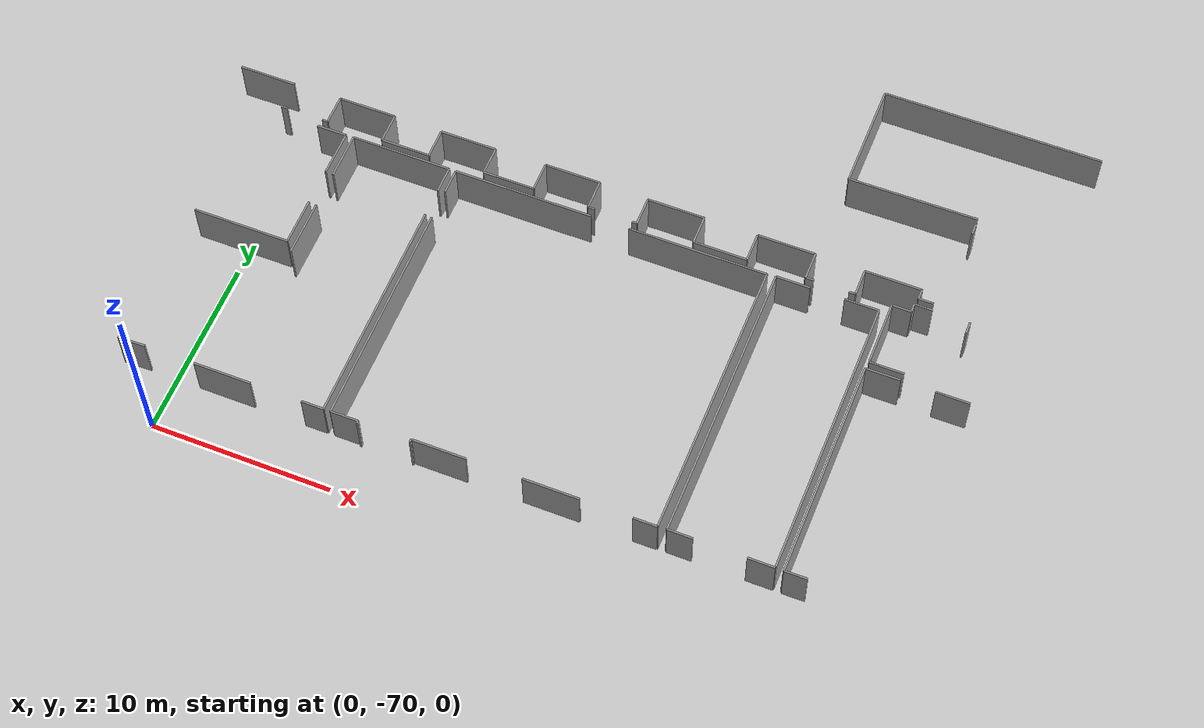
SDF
<sdf version="1.6">
 <world name="default">
  <model name="ground_plane">
   <static>1</static>
   <link name="link">
    <collision name="collision">
     <geometry><plane><normal>0 0 1</normal><size>100 100</size></plane></geometry>
     <surface><friction><ode><mu>100</mu><mu2>50</mu2></ode></friction></surface>
    </collision>
    <visual name="visual">
     <cast_shadows>0</cast_shadows>
     <geometry><plane><normal>0 0 1</normal><size>100 100</size></plane></geometry>
     <material>
      <script><uri>file://media/materials/scripts/gazebo.material</uri><name>Gazebo/Grey</name></script>
     </material>
    </visual>
   </link>
  </model>
  <model name="50036894">
   <static>1</static>
   <link name="Wall_270">
    <collision name="Wall_270_Collision">
     <geometry><box><size>1.68897285851 0.1 2.5</size></box></geometry>
     <pose>0.844486429255 0 1.25 0 0 0</pose>
    </collision>
    <visual name="Wall_270_Visual">
     <pose>0.844486429255 0 1.25 0 0 0</pose>
     <geometry><box><size>1.68897285851 0.1 2.5</size></box></geometry>
     <material>
      <script><uri>file://media/materials/scripts/gazebo.material</uri><name>Gazebo/Grey</name></script>
      <ambient>1 1 1 1</ambient>
     </material>
    </visual>
    <pose>123.582346937 -118.586943428 0 0 0 0.0</pose>
   </link>
   <link name="Wall_271">
    <collision name="Wall_271_Collision">
     <geometry><box><size>2.57961440192 0.1 2.5</size></box></geometry>
     <pose>1.28980720096 0 1.25 0 0 0</pose>
    </collision>
    <visual name="Wall_271_Visual">
     <pose>1.28980720096 0 1.25 0 0 0</pose>
     <geometry><box><size>2.57961440192 0.1 2.5</size></box></geometry>
     <material>
      <script><uri>file://media/materials/scripts/gazebo.material</uri><name>Gazebo/Grey</name></script>
      <ambient>1 1 1 1</ambient>
     </material>
    </visual>
    <pose>125.271319795 -118.586943428 0 0 0 -1.57079632679</pose>
   </link>
   <link name="Wall_272">
    <collision name="Wall_272_Collision">
     <geometry><box><size>2.6511294689 0.1 2.5</size></box></geometry>
     <pose>1.32556473445 0 1.25 0 0 0</pose>
    </collision>
    <visual name="Wall_272_Visual">
     <pose>1.32556473445 0 1.25 0 0 0</pose>
     <geometry><box><size>2.6511294689 0.1 2.5</size></box></geometry>
     <material>
      <script><uri>file://media/materials/scripts/gazebo.material</uri><name>Gazebo/Grey</name></script>
      <ambient>1 1 1 1</ambient>
     </material>
    </visual>
    <pose>125.271319795 -123.259261138 0 0 0 -1.57079632679</pose>
   </link>
   <link name="Wall_273">
    <collision name="Wall_273_Collision">
     <geometry><box><size>5.39659796233 0.1 2.5</size></box></geometry>
     <pose>2.69829898116 0 1.25 0 0 0</pose>
    </collision>
    <visual name="Wall_273_Visual">
     <pose>2.69829898116 0 1.25 0 0 0</pose>
     <geometry><box><size>5.39659796233 0.1 2.5</size></box></geometry>
     <material>
      <script><uri>file://media/materials/scripts/gazebo.material</uri><name>Gazebo/Grey</name></script>
      <ambient>1 1 1 1</ambient>
     </material>
    </visual>
    <pose>125.271319795 -125.910390607 0 0 0 3.14159265359</pose>
   </link>
   <link name="Wall_279">
    <collision name="Wall_279_Collision">
     <geometry><box><size>3.15148133824 0.1 2.5</size></box></geometry>
     <pose>1.57574066912 0 1.25 0 0 0</pose>
    </collision>
    <visual name="Wall_279_Visual">
     <pose>1.57574066912 0 1.25 0 0 0</pose>
     <geometry><box><size>3.15148133824 0.1 2.5</size></box></geometry>
     <material>
      <script><uri>file://media/materials/scripts/gazebo.material</uri><name>Gazebo/Grey</name></script>
      <ambient>1 1 1 1</ambient>
     </material>
    </visual>
    <pose>125.710046979 -126.427226445 0 0 0 1.57079632679</pose>
   </link>
   <link name="Wall_280">
    <collision name="Wall_280_Collision">
     <geometry><box><size>2.60979274579 0.1 2.5</size></box></geometry>
     <pose>1.30489637289 0 1.25 0 0 0</pose>
    </collision>
    <visual name="Wall_280_Visual">
     <pose>1.30489637289 0 1.25 0 0 0</pose>
     <geometry><box><size>2.60979274579 0.1 2.5</size></box></geometry>
     <material>
      <script><uri>file://media/materials/scripts/gazebo.material</uri><name>Gazebo/Grey</name></script>
      <ambient>1 1 1 1</ambient>
     </material>
    </visual>
    <pose>125.710046979 -121.181520202 0 0 0 1.57079632679</pose>
   </link>
   <link name="Wall_281">
    <collision name="Wall_281_Collision">
     <geometry><box><size>5.61469355667 0.1 2.5</size></box></geometry>
     <pose>2.80734677833 0 1.25 0 0 0</pose>
    </collision>
    <visual name="Wall_281_Visual">
     <pose>2.80734677833 0 1.25 0 0 0</pose>
     <geometry><box><size>5.61469355667 0.1 2.5</size></box></geometry>
     <material>
      <script><uri>file://media/materials/scripts/gazebo.material</uri><name>Gazebo/Grey</name></script>
      <ambient>1 1 1 1</ambient>
     </material>
    </visual>
    <pose>125.710046979 -118.571727457 0 0 0 0.0</pose>
   </link>
   <link name="Wall_282">
    <collision name="Wall_282_Collision">
     <geometry><box><size>1.50029480945 0.1 2.5</size></box></geometry>
     <pose>0.750147404726 0 1.25 0 0 0</pose>
    </collision>
    <visual name="Wall_282_Visual">
     <pose>0.750147404726 0 1.25 0 0 0</pose>
     <geometry><box><size>1.50029480945 0.1 2.5</size></box></geometry>
     <material>
      <script><uri>file://media/materials/scripts/gazebo.material</uri><name>Gazebo/Grey</name></script>
      <ambient>1 1 1 1</ambient>
     </material>
    </visual>
    <pose>131.324740536 -118.571727457 0 0 0 -1.57079632679</pose>
   </link>
   <link name="Wall_283">
    <collision name="Wall_283_Collision">
     <geometry><box><size>12.668818036 0.1 2.5</size></box></geometry>
     <pose>6.334409018 0 1.25 0 0 0</pose>
    </collision>
    <visual name="Wall_283_Visual">
     <pose>6.334409018 0 1.25 0 0 0</pose>
     <geometry><box><size>12.668818036 0.1 2.5</size></box></geometry>
     <material>
      <script><uri>file://media/materials/scripts/gazebo.material</uri><name>Gazebo/Grey</name></script>
      <ambient>1 1 1 1</ambient>
     </material>
    </visual>
    <pose>131.324740536 -121.70976802 0 0 0 -1.57079632679</pose>
   </link>
   <link name="Wall_284">
    <collision name="Wall_284_Collision">
     <geometry><box><size>1.24010169341 0.1 2.5</size></box></geometry>
     <pose>0.620050846705 0 1.25 0 0 0</pose>
    </collision>
    <visual name="Wall_284_Visual">
     <pose>0.620050846705 0 1.25 0 0 0</pose>
     <geometry><box><size>1.24010169341 0.1 2.5</size></box></geometry>
     <material>
      <script><uri>file://media/materials/scripts/gazebo.material</uri><name>Gazebo/Grey</name></script>
      <ambient>1 1 1 1</ambient>
     </material>
    </visual>
    <pose>131.324740536 -134.378586056 0 0 0 3.14159265359</pose>
   </link>
   <link name="Wall_285">
    <collision name="Wall_285_Collision">
     <geometry><box><size>3.18267408023 0.1 2.5</size></box></geometry>
     <pose>1.59133704011 0 1.25 0 0 0</pose>
    </collision>
    <visual name="Wall_285_Visual">
     <pose>1.59133704011 0 1.25 0 0 0</pose>
     <geometry><box><size>3.18267408023 0.1 2.5</size></box></geometry>
     <material>
      <script><uri>file://media/materials/scripts/gazebo.material</uri><name>Gazebo/Grey</name></script>
      <ambient>1 1 1 1</ambient>
     </material>
    </visual>
    <pose>127.229108154 -134.378586056 0 0 0 3.14159265359</pose>
   </link>
   <link name="Wall_286">
    <collision name="Wall_286_Collision">
     <geometry><box><size>1.52201726286 0.1 2.5</size></box></geometry>
     <pose>0.761008631428 0 1.25 0 0 0</pose>
    </collision>
    <visual name="Wall_286_Visual">
     <pose>0.761008631428 0 1.25 0 0 0</pose>
     <geometry><box><size>1.52201726286 0.1 2.5</size></box></geometry>
     <material>
      <script><uri>file://media/materials/scripts/gazebo.material</uri><name>Gazebo/Grey</name></script>
      <ambient>1 1 1 1</ambient>
     </material>
    </visual>
    <pose>121.246695281 -134.378586056 0 0 0 -3.11809697812</pose>
   </link>
   <link name="Wall_287">
    <collision name="Wall_287_Collision">
     <geometry><box><size>12.6264669148 0.1 2.5</size></box></geometry>
     <pose>6.31323345739 0 1.25 0 0 0</pose>
    </collision>
    <visual name="Wall_287_Visual">
     <pose>6.31323345739 0 1.25 0 0 0</pose>
     <geometry><box><size>12.6264669148 0.1 2.5</size></box></geometry>
     <material>
      <script><uri>file://media/materials/scripts/gazebo.material</uri><name>Gazebo/Grey</name></script>
      <ambient>1 1 1 1</ambient>
     </material>
    </visual>
    <pose>131.710211819 -134.368188475 0 0 0 1.57079632679</pose>
   </link>
   <link name="Wall_288">
    <collision name="Wall_288_Collision">
     <geometry><box><size>1.42954054105 0.1 2.5</size></box></geometry>
     <pose>0.714770270527 0 1.25 0 0 0</pose>
    </collision>
    <visual name="Wall_288_Visual">
     <pose>0.714770270527 0 1.25 0 0 0</pose>
     <geometry><box><size>1.42954054105 0.1 2.5</size></box></geometry>
     <material>
      <script><uri>file://media/materials/scripts/gazebo.material</uri><name>Gazebo/Grey</name></script>
      <ambient>1 1 1 1</ambient>
     </material>
    </visual>
    <pose>131.710211819 -120.007607986 0 0 0 1.57079632679</pose>
   </link>
   <link name="Wall_289">
    <collision name="Wall_289_Collision">
     <geometry><box><size>7.78550551896 0.1 2.5</size></box></geometry>
     <pose>3.89275275948 0 1.25 0 0 0</pose>
    </collision>
    <visual name="Wall_289_Visual">
     <pose>3.89275275948 0 1.25 0 0 0</pose>
     <geometry><box><size>7.78550551896 0.1 2.5</size></box></geometry>
     <material>
      <script><uri>file://media/materials/scripts/gazebo.material</uri><name>Gazebo/Grey</name></script>
      <ambient>1 1 1 1</ambient>
     </material>
    </visual>
    <pose>131.710211819 -118.578067445 0 0 0 0.0</pose>
   </link>
   <link name="Wall_290">
    <collision name="Wall_290_Collision">
     <geometry><box><size>7.72717762745 0.1 2.5</size></box></geometry>
     <pose>3.86358881372 0 1.25 0 0 0</pose>
    </collision>
    <visual name="Wall_290_Visual">
     <pose>3.86358881372 0 1.25 0 0 0</pose>
     <geometry><box><size>7.72717762745 0.1 2.5</size></box></geometry>
     <material>
      <script><uri>file://media/materials/scripts/gazebo.material</uri><name>Gazebo/Grey</name></script>
      <ambient>1 1 1 1</ambient>
     </material>
    </visual>
    <pose>141.648777333 -118.578067445 0 0 0 0.0</pose>
   </link>
   <link name="Wall_291">
    <collision name="Wall_291_Collision">
     <geometry><box><size>15.7622250823 0.1 2.5</size></box></geometry>
     <pose>7.88111254113 0 1.25 0 0 0</pose>
    </collision>
    <visual name="Wall_291_Visual">
     <pose>7.88111254113 0 1.25 0 0 0</pose>
     <geometry><box><size>15.7622250823 0.1 2.5</size></box></geometry>
     <material>
      <script><uri>file://media/materials/scripts/gazebo.material</uri><name>Gazebo/Grey</name></script>
      <ambient>1 1 1 1</ambient>
     </material>
    </visual>
    <pose>149.375954961 -118.578067445 0 0 0 -1.57079632679</pose>
   </link>
   <link name="Wall_292">
    <collision name="Wall_292_Collision">
     <geometry><box><size>1.30350157549 0.1 2.5</size></box></geometry>
     <pose>0.651750787744 0 1.25 0 0 0</pose>
    </collision>
    <visual name="Wall_292_Visual">
     <pose>0.651750787744 0 1.25 0 0 0</pose>
     <geometry><box><size>1.30350157549 0.1 2.5</size></box></geometry>
     <material>
      <script><uri>file://media/materials/scripts/gazebo.material</uri><name>Gazebo/Grey</name></script>
      <ambient>1 1 1 1</ambient>
     </material>
    </visual>
    <pose>149.375954961 -134.340292527 0 0 0 3.14159265359</pose>
   </link>
   <link name="Wall_293">
    <collision name="Wall_293_Collision">
     <geometry><box><size>3.08884225475 0.1 2.5</size></box></geometry>
     <pose>1.54442112738 0 1.25 0 0 0</pose>
    </collision>
    <visual name="Wall_293_Visual">
     <pose>1.54442112738 0 1.25 0 0 0</pose>
     <geometry><box><size>3.08884225475 0.1 2.5</size></box></geometry>
     <material>
      <script><uri>file://media/materials/scripts/gazebo.material</uri><name>Gazebo/Grey</name></script>
      <ambient>1 1 1 1</ambient>
     </material>
    </visual>
    <pose>145.254962626 -134.340292527 0 0 0 3.14159265359</pose>
   </link>
   <link name="Wall_294">
    <collision name="Wall_294_Collision">
     <geometry><box><size>2.98993843871 0.1 2.5</size></box></geometry>
     <pose>1.49496921936 0 1.25 0 0 0</pose>
    </collision>
    <visual name="Wall_294_Visual">
     <pose>1.49496921936 0 1.25 0 0 0</pose>
     <geometry><box><size>2.98993843871 0.1 2.5</size></box></geometry>
     <material>
      <script><uri>file://media/materials/scripts/gazebo.material</uri><name>Gazebo/Grey</name></script>
      <ambient>1 1 1 1</ambient>
     </material>
    </visual>
    <pose>139.135606008 -134.340292527 0 0 0 3.14159265359</pose>
   </link>
   <link name="Wall_295">
    <collision name="Wall_295_Collision">
     <geometry><box><size>0.16610769104 0.1 2.5</size></box></geometry>
     <pose>0.0830538455198 0 1.25 0 0 0</pose>
    </collision>
    <visual name="Wall_295_Visual">
     <pose>0.0830538455198 0 1.25 0 0 0</pose>
     <geometry><box><size>0.16610769104 0.1 2.5</size></box></geometry>
     <material>
      <script><uri>file://media/materials/scripts/gazebo.material</uri><name>Gazebo/Grey</name></script>
      <ambient>1 1 1 1</ambient>
     </material>
    </visual>
    <pose>136.145667569 -134.340292527 0 0 0 -1.57079632679</pose>
   </link>
   <link name="Wall_296">
    <collision name="Wall_296_Collision">
     <geometry><box><size>0.142522934907 0.1 2.5</size></box></geometry>
     <pose>0.0712614674537 0 1.25 0 0 0</pose>
    </collision>
    <visual name="Wall_296_Visual">
     <pose>0.0712614674537 0 1.25 0 0 0</pose>
     <geometry><box><size>0.142522934907 0.1 2.5</size></box></geometry>
     <material>
      <script><uri>file://media/materials/scripts/gazebo.material</uri><name>Gazebo/Grey</name></script>
      <ambient>1 1 1 1</ambient>
     </material>
    </visual>
    <pose>133.24195297 -134.506400218 0 0 0 1.57079632679</pose>
   </link>
   <link name="Wall_297">
    <collision name="Wall_297_Collision">
     <geometry><box><size>1.53174721802 0.1 2.5</size></box></geometry>
     <pose>0.765873609012 0 1.25 0 0 0</pose>
    </collision>
    <visual name="Wall_297_Visual">
     <pose>0.765873609012 0 1.25 0 0 0</pose>
     <geometry><box><size>1.53174721802 0.1 2.5</size></box></geometry>
     <material>
      <script><uri>file://media/materials/scripts/gazebo.material</uri><name>Gazebo/Grey</name></script>
      <ambient>1 1 1 1</ambient>
     </material>
    </visual>
    <pose>133.24195297 -134.363877283 0 0 0 -3.13877809149</pose>
   </link>
   <link name="Wall_298">
    <collision name="Wall_298_Collision">
     <geometry><box><size>15.7675506724 0.1 2.5</size></box></geometry>
     <pose>7.88377533618 0 1.25 0 0 0</pose>
    </collision>
    <visual name="Wall_298_Visual">
     <pose>7.88377533618 0 1.25 0 0 0</pose>
     <geometry><box><size>15.7675506724 0.1 2.5</size></box></geometry>
     <material>
      <script><uri>file://media/materials/scripts/gazebo.material</uri><name>Gazebo/Grey</name></script>
      <ambient>1 1 1 1</ambient>
     </material>
    </visual>
    <pose>149.855258069 -134.301998998 0 0 0 1.57079632679</pose>
   </link>
   <link name="Wall_299">
    <collision name="Wall_299_Collision">
     <geometry><box><size>1.89185248115 0.1 2.5</size></box></geometry>
     <pose>0.945926240577 0 1.25 0 0 0</pose>
    </collision>
    <visual name="Wall_299_Visual">
     <pose>0.945926240577 0 1.25 0 0 0</pose>
     <geometry><box><size>1.89185248115 0.1 2.5</size></box></geometry>
     <material>
      <script><uri>file://media/materials/scripts/gazebo.material</uri><name>Gazebo/Grey</name></script>
      <ambient>1 1 1 1</ambient>
     </material>
    </visual>
    <pose>149.855258069 -118.534448326 0 0 0 0.0</pose>
   </link>
   <link name="Wall_300">
    <collision name="Wall_300_Collision">
     <geometry><box><size>1.87917250474 0.1 2.5</size></box></geometry>
     <pose>0.93958625237 0 1.25 0 0 0</pose>
    </collision>
    <visual name="Wall_300_Visual">
     <pose>0.93958625237 0 1.25 0 0 0</pose>
     <geometry><box><size>1.87917250474 0.1 2.5</size></box></geometry>
     <material>
      <script><uri>file://media/materials/scripts/gazebo.material</uri><name>Gazebo/Grey</name></script>
      <ambient>1 1 1 1</ambient>
     </material>
    </visual>
    <pose>153.62881905 -118.534448326 0 0 0 0.0</pose>
   </link>
   <link name="Wall_301">
    <collision name="Wall_301_Collision">
     <geometry><box><size>15.7746514591 0.1 2.5</size></box></geometry>
     <pose>7.88732572957 0 1.25 0 0 0</pose>
    </collision>
    <visual name="Wall_301_Visual">
     <pose>7.88732572957 0 1.25 0 0 0</pose>
     <geometry><box><size>15.7746514591 0.1 2.5</size></box></geometry>
     <material>
      <script><uri>file://media/materials/scripts/gazebo.material</uri><name>Gazebo/Grey</name></script>
      <ambient>1 1 1 1</ambient>
     </material>
    </visual>
    <pose>155.507991555 -118.534448326 0 0 0 -1.57079632679</pose>
   </link>
   <link name="Wall_302">
    <collision name="Wall_302_Collision">
     <geometry><box><size>1.45819728775 0.1 2.5</size></box></geometry>
     <pose>0.729098643877 0 1.25 0 0 0</pose>
    </collision>
    <visual name="Wall_302_Visual">
     <pose>0.729098643877 0 1.25 0 0 0</pose>
     <geometry><box><size>1.45819728775 0.1 2.5</size></box></geometry>
     <material>
      <script><uri>file://media/materials/scripts/gazebo.material</uri><name>Gazebo/Grey</name></script>
      <ambient>1 1 1 1</ambient>
     </material>
    </visual>
    <pose>155.507991555 -134.309099785 0 0 0 3.14159265359</pose>
   </link>
   <link name="Wall_303">
    <collision name="Wall_303_Collision">
     <geometry><box><size>1.3567760578 0.1 2.5</size></box></geometry>
     <pose>0.678388028901 0 1.25 0 0 0</pose>
    </collision>
    <visual name="Wall_303_Visual">
     <pose>0.678388028901 0 1.25 0 0 0</pose>
     <geometry><box><size>1.3567760578 0.1 2.5</size></box></geometry>
     <material>
      <script><uri>file://media/materials/scripts/gazebo.material</uri><name>Gazebo/Grey</name></script>
      <ambient>1 1 1 1</ambient>
     </material>
    </visual>
    <pose>151.212015546 -134.309099785 0 0 0 3.13635905651</pose>
   </link>
   <link name="Wall_304">
    <collision name="Wall_304_Collision">
     <geometry><box><size>6.05291354158 0.1 2.5</size></box></geometry>
     <pose>3.02645677079 0 1.25 0 0 0</pose>
    </collision>
    <visual name="Wall_304_Visual">
     <pose>3.02645677079 0 1.25 0 0 0</pose>
     <geometry><box><size>6.05291354158 0.1 2.5</size></box></geometry>
     <material>
      <script><uri>file://media/materials/scripts/gazebo.material</uri><name>Gazebo/Grey</name></script>
      <ambient>1 1 1 1</ambient>
     </material>
    </visual>
    <pose>151.389535215 -111.310158563 0 0 0 1.57079632679</pose>
   </link>
   <link name="Wall_305">
    <collision name="Wall_305_Collision">
     <geometry><box><size>12.238713236 0.1 2.5</size></box></geometry>
     <pose>6.119356618 0 1.25 0 0 0</pose>
    </collision>
    <visual name="Wall_305_Visual">
     <pose>6.119356618 0 1.25 0 0 0</pose>
     <geometry><box><size>12.238713236 0.1 2.5</size></box></geometry>
     <material>
      <script><uri>file://media/materials/scripts/gazebo.material</uri><name>Gazebo/Grey</name></script>
      <ambient>1 1 1 1</ambient>
     </material>
    </visual>
    <pose>151.389535215 -105.257245022 0 0 0 0.0</pose>
   </link>
   <link name="Wall_311">
    <collision name="Wall_311_Collision">
     <geometry><box><size>7.1669300738 0.1 2.5</size></box></geometry>
     <pose>3.5834650369 0 1.25 0 0 0</pose>
    </collision>
    <visual name="Wall_311_Visual">
     <pose>3.5834650369 0 1.25 0 0 0</pose>
     <geometry><box><size>7.1669300738 0.1 2.5</size></box></geometry>
     <material>
      <script><uri>file://media/materials/scripts/gazebo.material</uri><name>Gazebo/Grey</name></script>
      <ambient>1 1 1 1</ambient>
     </material>
    </visual>
    <pose>158.556257885 -111.255634665 0 0 0 -3.13398487397</pose>
   </link>
   <link name="Wall_322">
    <collision name="Wall_322_Collision">
     <geometry><box><size>0.666966759442 0.1 2.5</size></box></geometry>
     <pose>0.333483379721 0 1.25 0 0 0</pose>
    </collision>
    <visual name="Wall_322_Visual">
     <pose>0.333483379721 0 1.25 0 0 0</pose>
     <geometry><box><size>0.666966759442 0.1 2.5</size></box></geometry>
     <material>
      <script><uri>file://media/materials/scripts/gazebo.material</uri><name>Gazebo/Grey</name></script>
      <ambient>1 1 1 1</ambient>
     </material>
    </visual>
    <pose>158.558793881 -112.254056007 0 0 0 1.57079632679</pose>
   </link>
   <link name="Wall_326">
    <collision name="Wall_326_Collision">
     <geometry><box><size>0.824198466991 0.1 2.5</size></box></geometry>
     <pose>0.412099233495 0 1.25 0 0 0</pose>
    </collision>
    <visual name="Wall_326_Visual">
     <pose>0.412099233495 0 1.25 0 0 0</pose>
     <geometry><box><size>0.824198466991 0.1 2.5</size></box></geometry>
     <material>
      <script><uri>file://media/materials/scripts/gazebo.material</uri><name>Gazebo/Grey</name></script>
      <ambient>1 1 1 1</ambient>
     </material>
    </visual>
    <pose>158.0110189 -117.096031801 0 0 0 3.14159265359</pose>
   </link>
   <link name="Wall_327">
    <collision name="Wall_327_Collision">
     <geometry><box><size>0.576938926894 0.1 2.5</size></box></geometry>
     <pose>0.288469463447 0 1.25 0 0 0</pose>
    </collision>
    <visual name="Wall_327_Visual">
     <pose>0.288469463447 0 1.25 0 0 0</pose>
     <geometry><box><size>0.576938926894 0.1 2.5</size></box></geometry>
     <material>
      <script><uri>file://media/materials/scripts/gazebo.material</uri><name>Gazebo/Grey</name></script>
      <ambient>1 1 1 1</ambient>
     </material>
    </visual>
    <pose>157.186820433 -117.096031801 0 0 0 1.57079632679</pose>
   </link>
   <link name="Wall_328">
    <collision name="Wall_328_Collision">
     <geometry><box><size>3.13195417457 0.1 2.5</size></box></geometry>
     <pose>1.56597708728 0 1.25 0 0 0</pose>
    </collision>
    <visual name="Wall_328_Visual">
     <pose>1.56597708728 0 1.25 0 0 0</pose>
     <geometry><box><size>3.13195417457 0.1 2.5</size></box></geometry>
     <material>
      <script><uri>file://media/materials/scripts/gazebo.material</uri><name>Gazebo/Grey</name></script>
      <ambient>1 1 1 1</ambient>
     </material>
    </visual>
    <pose>157.186820433 -116.519092874 0 0 0 3.14159265359</pose>
   </link>
   <link name="Wall_329">
    <collision name="Wall_329_Collision">
     <geometry><box><size>1.5079027953 0.1 2.5</size></box></geometry>
     <pose>0.75395139765 0 1.25 0 0 0</pose>
    </collision>
    <visual name="Wall_329_Visual">
     <pose>0.75395139765 0 1.25 0 0 0</pose>
     <geometry><box><size>1.5079027953 0.1 2.5</size></box></geometry>
     <material>
      <script><uri>file://media/materials/scripts/gazebo.material</uri><name>Gazebo/Grey</name></script>
      <ambient>1 1 1 1</ambient>
     </material>
    </visual>
    <pose>154.054866258 -116.519092874 0 0 0 -1.57079632679</pose>
   </link>
   <link name="Wall_330">
    <collision name="Wall_330_Collision">
     <geometry><box><size>0.349967349061 0.1 2.5</size></box></geometry>
     <pose>0.17498367453 0 1.25 0 0 0</pose>
    </collision>
    <visual name="Wall_330_Visual">
     <pose>0.17498367453 0 1.25 0 0 0</pose>
     <geometry><box><size>0.349967349061 0.1 2.5</size></box></geometry>
     <material>
      <script><uri>file://media/materials/scripts/gazebo.material</uri><name>Gazebo/Grey</name></script>
      <ambient>1 1 1 1</ambient>
     </material>
    </visual>
    <pose>154.054866258 -118.02699567 0 0 0 3.14159265359</pose>
   </link>
   <link name="Wall_331">
    <collision name="Wall_331_Collision">
     <geometry><box><size>0.4488711651 0.1 2.5</size></box></geometry>
     <pose>0.22443558255 0 1.25 0 0 0</pose>
    </collision>
    <visual name="Wall_331_Visual">
     <pose>0.22443558255 0 1.25 0 0 0</pose>
     <geometry><box><size>0.4488711651 0.1 2.5</size></box></geometry>
     <material>
      <script><uri>file://media/materials/scripts/gazebo.material</uri><name>Gazebo/Grey</name></script>
      <ambient>1 1 1 1</ambient>
     </material>
    </visual>
    <pose>151.762326522 -118.02699567 0 0 0 3.14159265359</pose>
   </link>
   <link name="Wall_332">
    <collision name="Wall_332_Collision">
     <geometry><box><size>1.55152191417 0.1 2.5</size></box></geometry>
     <pose>0.775760957085 0 1.25 0 0 0</pose>
    </collision>
    <visual name="Wall_332_Visual">
     <pose>0.775760957085 0 1.25 0 0 0</pose>
     <geometry><box><size>1.55152191417 0.1 2.5</size></box></geometry>
     <material>
      <script><uri>file://media/materials/scripts/gazebo.material</uri><name>Gazebo/Grey</name></script>
      <ambient>1 1 1 1</ambient>
     </material>
    </visual>
    <pose>151.313455357 -118.02699567 0 0 0 1.57079632679</pose>
   </link>
   <link name="Wall_333">
    <collision name="Wall_333_Collision">
     <geometry><box><size>3.21817801419 0.1 2.5</size></box></geometry>
     <pose>1.60908900709 0 1.25 0 0 0</pose>
    </collision>
    <visual name="Wall_333_Visual">
     <pose>1.60908900709 0 1.25 0 0 0</pose>
     <geometry><box><size>3.21817801419 0.1 2.5</size></box></geometry>
     <material>
      <script><uri>file://media/materials/scripts/gazebo.material</uri><name>Gazebo/Grey</name></script>
      <ambient>1 1 1 1</ambient>
     </material>
    </visual>
    <pose>151.313455357 -116.475473756 0 0 0 3.14159265359</pose>
   </link>
   <link name="Wall_334">
    <collision name="Wall_334_Collision">
     <geometry><box><size>1.63850655238 0.1 2.5</size></box></geometry>
     <pose>0.819253276189 0 1.25 0 0 0</pose>
    </collision>
    <visual name="Wall_334_Visual">
     <pose>0.819253276189 0 1.25 0 0 0</pose>
     <geometry><box><size>1.63850655238 0.1 2.5</size></box></geometry>
     <material>
      <script><uri>file://media/materials/scripts/gazebo.material</uri><name>Gazebo/Grey</name></script>
      <ambient>1 1 1 1</ambient>
     </material>
    </visual>
    <pose>148.095277343 -116.475473756 0 0 0 -1.57079632679</pose>
   </link>
   <link name="Wall_335">
    <collision name="Wall_335_Collision">
     <geometry><box><size>2.98740244343 0.1 2.5</size></box></geometry>
     <pose>1.49370122172 0 1.25 0 0 0</pose>
    </collision>
    <visual name="Wall_335_Visual">
     <pose>1.49370122172 0 1.25 0 0 0</pose>
     <geometry><box><size>2.98740244343 0.1 2.5</size></box></geometry>
     <material>
      <script><uri>file://media/materials/scripts/gazebo.material</uri><name>Gazebo/Grey</name></script>
      <ambient>1 1 1 1</ambient>
     </material>
    </visual>
    <pose>148.095277343 -118.113980308 0 0 0 3.14159265359</pose>
   </link>
   <link name="Wall_336">
    <collision name="Wall_336_Collision">
     <geometry><box><size>1.62405137926 0.1 2.5</size></box></geometry>
     <pose>0.812025689632 0 1.25 0 0 0</pose>
    </collision>
    <visual name="Wall_336_Visual">
     <pose>0.812025689632 0 1.25 0 0 0</pose>
     <geometry><box><size>1.62405137926 0.1 2.5</size></box></geometry>
     <material>
      <script><uri>file://media/materials/scripts/gazebo.material</uri><name>Gazebo/Grey</name></script>
      <ambient>1 1 1 1</ambient>
     </material>
    </visual>
    <pose>145.107874899 -118.113980308 0 0 0 1.57079632679</pose>
   </link>
   <link name="Wall_337">
    <collision name="Wall_337_Collision">
     <geometry><box><size>3.19028206608 0.1 2.5</size></box></geometry>
     <pose>1.59514103304 0 1.25 0 0 0</pose>
    </collision>
    <visual name="Wall_337_Visual">
     <pose>1.59514103304 0 1.25 0 0 0</pose>
     <geometry><box><size>3.19028206608 0.1 2.5</size></box></geometry>
     <material>
      <script><uri>file://media/materials/scripts/gazebo.material</uri><name>Gazebo/Grey</name></script>
      <ambient>1 1 1 1</ambient>
     </material>
    </visual>
    <pose>145.107874899 -116.489928929 0 0 0 3.14159265359</pose>
   </link>
   <link name="Wall_338">
    <collision name="Wall_338_Collision">
     <geometry><box><size>1.62405137926 0.1 2.5</size></box></geometry>
     <pose>0.812025689632 0 1.25 0 0 0</pose>
    </collision>
    <visual name="Wall_338_Visual">
     <pose>0.812025689632 0 1.25 0 0 0</pose>
     <geometry><box><size>1.62405137926 0.1 2.5</size></box></geometry>
     <material>
      <script><uri>file://media/materials/scripts/gazebo.material</uri><name>Gazebo/Grey</name></script>
      <ambient>1 1 1 1</ambient>
     </material>
    </visual>
    <pose>141.917592833 -116.489928929 0 0 0 -1.57079632679</pose>
   </link>
   <link name="Wall_339">
    <collision name="Wall_339_Collision">
     <geometry><box><size>0.276423485852 0.1 2.5</size></box></geometry>
     <pose>0.138211742926 0 1.25 0 0 0</pose>
    </collision>
    <visual name="Wall_339_Visual">
     <pose>0.138211742926 0 1.25 0 0 0</pose>
     <geometry><box><size>0.276423485852 0.1 2.5</size></box></geometry>
     <material>
      <script><uri>file://media/materials/scripts/gazebo.material</uri><name>Gazebo/Grey</name></script>
      <ambient>1 1 1 1</ambient>
     </material>
    </visual>
    <pose>141.917592833 -118.113980308 0 0 0 3.14159265359</pose>
   </link>
   <link name="Wall_340">
    <collision name="Wall_340_Collision">
     <geometry><box><size>0.365183320759 0.1 2.5</size></box></geometry>
     <pose>0.18259166038 0 1.25 0 0 0</pose>
    </collision>
    <visual name="Wall_340_Visual">
     <pose>0.18259166038 0 1.25 0 0 0</pose>
     <geometry><box><size>0.365183320759 0.1 2.5</size></box></geometry>
     <material>
      <script><uri>file://media/materials/scripts/gazebo.material</uri><name>Gazebo/Grey</name></script>
      <ambient>1 1 1 1</ambient>
     </material>
    </visual>
    <pose>139.508397314 -118.113980308 0 0 0 3.14159265359</pose>
   </link>
   <link name="Wall_341">
    <collision name="Wall_341_Collision">
     <geometry><box><size>1.68694406228 0.1 2.5</size></box></geometry>
     <pose>0.843472031142 0 1.25 0 0 0</pose>
    </collision>
    <visual name="Wall_341_Visual">
     <pose>0.843472031142 0 1.25 0 0 0</pose>
     <geometry><box><size>1.68694406228 0.1 2.5</size></box></geometry>
     <material>
      <script><uri>file://media/materials/scripts/gazebo.material</uri><name>Gazebo/Grey</name></script>
      <ambient>1 1 1 1</ambient>
     </material>
    </visual>
    <pose>139.143213994 -118.113980308 0 0 0 1.57079632679</pose>
   </link>
   <link name="Wall_342">
    <collision name="Wall_342_Collision">
     <geometry><box><size>3.12941817928 0.1 2.5</size></box></geometry>
     <pose>1.56470908964 0 1.25 0 0 0</pose>
    </collision>
    <visual name="Wall_342_Visual">
     <pose>1.56470908964 0 1.25 0 0 0</pose>
     <geometry><box><size>3.12941817928 0.1 2.5</size></box></geometry>
     <material>
      <script><uri>file://media/materials/scripts/gazebo.material</uri><name>Gazebo/Grey</name></script>
      <ambient>1 1 1 1</ambient>
     </material>
    </visual>
    <pose>139.143213994 -116.427036246 0 0 0 3.14159265359</pose>
   </link>
   <link name="Wall_343">
    <collision name="Wall_343_Collision">
     <geometry><box><size>1.6557513203 0.1 2.5</size></box></geometry>
     <pose>0.827875660151 0 1.25 0 0 0</pose>
    </collision>
    <visual name="Wall_343_Visual">
     <pose>0.827875660151 0 1.25 0 0 0</pose>
     <geometry><box><size>1.6557513203 0.1 2.5</size></box></geometry>
     <material>
      <script><uri>file://media/materials/scripts/gazebo.material</uri><name>Gazebo/Grey</name></script>
      <ambient>1 1 1 1</ambient>
     </material>
    </visual>
    <pose>136.013795814 -116.427036246 0 0 0 -1.57079632679</pose>
   </link>
   <link name="Wall_344">
    <collision name="Wall_344_Collision">
     <geometry><box><size>2.88342663683 0.1 2.5</size></box></geometry>
     <pose>1.44171331841 0 1.25 0 0 0</pose>
    </collision>
    <visual name="Wall_344_Visual">
     <pose>1.44171331841 0 1.25 0 0 0</pose>
     <geometry><box><size>2.88342663683 0.1 2.5</size></box></geometry>
     <material>
      <script><uri>file://media/materials/scripts/gazebo.material</uri><name>Gazebo/Grey</name></script>
      <ambient>1 1 1 1</ambient>
     </material>
    </visual>
    <pose>136.013795814 -118.082787566 0 0 0 3.14159265359</pose>
   </link>
   <link name="Wall_345">
    <collision name="Wall_345_Collision">
     <geometry><box><size>1.60072022266 0.1 2.5</size></box></geometry>
     <pose>0.80036011133 0 1.25 0 0 0</pose>
    </collision>
    <visual name="Wall_345_Visual">
     <pose>0.80036011133 0 1.25 0 0 0</pose>
     <geometry><box><size>1.60072022266 0.1 2.5</size></box></geometry>
     <material>
      <script><uri>file://media/materials/scripts/gazebo.material</uri><name>Gazebo/Grey</name></script>
      <ambient>1 1 1 1</ambient>
     </material>
    </visual>
    <pose>133.130369178 -118.082787566 0 0 0 1.57079632679</pose>
   </link>
   <link name="Wall_346">
    <collision name="Wall_346_Collision">
     <geometry><box><size>3.16745810853 0.1 2.5</size></box></geometry>
     <pose>1.58372905426 0 1.25 0 0 0</pose>
    </collision>
    <visual name="Wall_346_Visual">
     <pose>1.58372905426 0 1.25 0 0 0</pose>
     <geometry><box><size>3.16745810853 0.1 2.5</size></box></geometry>
     <material>
      <script><uri>file://media/materials/scripts/gazebo.material</uri><name>Gazebo/Grey</name></script>
      <ambient>1 1 1 1</ambient>
     </material>
    </visual>
    <pose>133.130369178 -116.482067343 0 0 0 3.14159265359</pose>
   </link>
   <link name="Wall_347">
    <collision name="Wall_347_Collision">
     <geometry><box><size>1.67730728021 0.1 2.5</size></box></geometry>
     <pose>0.838653640104 0 1.25 0 0 0</pose>
    </collision>
    <visual name="Wall_347_Visual">
     <pose>0.838653640104 0 1.25 0 0 0</pose>
     <geometry><box><size>1.67730728021 0.1 2.5</size></box></geometry>
     <material>
      <script><uri>file://media/materials/scripts/gazebo.material</uri><name>Gazebo/Grey</name></script>
      <ambient>1 1 1 1</ambient>
     </material>
    </visual>
    <pose>129.962911069 -116.482067343 0 0 0 -1.57079632679</pose>
   </link>
   <link name="Wall_348">
    <collision name="Wall_348_Collision">
     <geometry><box><size>2.75409087739 0.1 2.5</size></box></geometry>
     <pose>1.3770454387 0 1.25 0 0 0</pose>
    </collision>
    <visual name="Wall_348_Visual">
     <pose>1.3770454387 0 1.25 0 0 0</pose>
     <geometry><box><size>2.75409087739 0.1 2.5</size></box></geometry>
     <material>
      <script><uri>file://media/materials/scripts/gazebo.material</uri><name>Gazebo/Grey</name></script>
      <ambient>1 1 1 1</ambient>
     </material>
    </visual>
    <pose>129.962911069 -118.159374624 0 0 0 3.14159265359</pose>
   </link>
   <link name="Wall_349">
    <collision name="Wall_349_Collision">
     <geometry><box><size>1.67172809059 0.1 2.5</size></box></geometry>
     <pose>0.835864045293 0 1.25 0 0 0</pose>
    </collision>
    <visual name="Wall_349_Visual">
     <pose>0.835864045293 0 1.25 0 0 0</pose>
     <geometry><box><size>1.67172809059 0.1 2.5</size></box></geometry>
     <material>
      <script><uri>file://media/materials/scripts/gazebo.material</uri><name>Gazebo/Grey</name></script>
      <ambient>1 1 1 1</ambient>
     </material>
    </visual>
    <pose>127.208820192 -118.159374624 0 0 0 1.57079632679</pose>
   </link>
   <link name="Wall_350">
    <collision name="Wall_350_Collision">
     <geometry><box><size>3.24100197174 0.1 2.5</size></box></geometry>
     <pose>1.62050098587 0 1.25 0 0 0</pose>
    </collision>
    <visual name="Wall_350_Visual">
     <pose>1.62050098587 0 1.25 0 0 0</pose>
     <geometry><box><size>3.24100197174 0.1 2.5</size></box></geometry>
     <material>
      <script><uri>file://media/materials/scripts/gazebo.material</uri><name>Gazebo/Grey</name></script>
      <ambient>1 1 1 1</ambient>
     </material>
    </visual>
    <pose>127.208820192 -116.487646533 0 0 0 3.14159265359</pose>
   </link>
   <link name="Wall_351">
    <collision name="Wall_351_Collision">
     <geometry><box><size>1.64915773257 0.1 2.5</size></box></geometry>
     <pose>0.824578866283 0 1.25 0 0 0</pose>
    </collision>
    <visual name="Wall_351_Visual">
     <pose>0.824578866283 0 1.25 0 0 0</pose>
     <geometry><box><size>1.64915773257 0.1 2.5</size></box></geometry>
     <material>
      <script><uri>file://media/materials/scripts/gazebo.material</uri><name>Gazebo/Grey</name></script>
      <ambient>1 1 1 1</ambient>
     </material>
    </visual>
    <pose>123.96781822 -116.487646533 0 0 0 -1.57079632679</pose>
   </link>
   <link name="Wall_352">
    <collision name="Wall_352_Collision">
     <geometry><box><size>0.306855429249 0.1 2.5</size></box></geometry>
     <pose>0.153427714624 0 1.25 0 0 0</pose>
    </collision>
    <visual name="Wall_352_Visual">
     <pose>0.153427714624 0 1.25 0 0 0</pose>
     <geometry><box><size>0.306855429249 0.1 2.5</size></box></geometry>
     <material>
      <script><uri>file://media/materials/scripts/gazebo.material</uri><name>Gazebo/Grey</name></script>
      <ambient>1 1 1 1</ambient>
     </material>
    </visual>
    <pose>123.96781822 -118.136804266 0 0 0 3.14159265359</pose>
   </link>
   <link name="Wall_353">
    <collision name="Wall_353_Collision">
     <geometry><box><size>0.344895358495 0.1 2.5</size></box></geometry>
     <pose>0.172447679247 0 1.25 0 0 0</pose>
    </collision>
    <visual name="Wall_353_Visual">
     <pose>0.172447679247 0 1.25 0 0 0</pose>
     <geometry><box><size>0.344895358495 0.1 2.5</size></box></geometry>
     <material>
      <script><uri>file://media/materials/scripts/gazebo.material</uri><name>Gazebo/Grey</name></script>
      <ambient>1 1 1 1</ambient>
     </material>
    </visual>
    <pose>121.571302677 -118.136804266 0 0 0 3.14159265359</pose>
   </link>
   <link name="Wall_355">
    <collision name="Wall_355_Collision">
     <geometry><box><size>3.18267408023 0.1 2.5</size></box></geometry>
     <pose>1.59133704011 0 1.25 0 0 0</pose>
    </collision>
    <visual name="Wall_355_Visual">
     <pose>1.59133704011 0 1.25 0 0 0</pose>
     <geometry><box><size>3.18267408023 0.1 2.5</size></box></geometry>
     <material>
      <script><uri>file://media/materials/scripts/gazebo.material</uri><name>Gazebo/Grey</name></script>
      <ambient>1 1 1 1</ambient>
     </material>
    </visual>
    <pose>121.226407319 -116.525940062 0 0 0 3.14159265359</pose>
   </link>
   <link name="Wall_370">
    <collision name="Wall_370_Collision">
     <geometry><box><size>3.55039339627 0.1 2.5</size></box></geometry>
     <pose>1.77519669813 0 1.25 0 0 0</pose>
    </collision>
    <visual name="Wall_370_Visual">
     <pose>1.77519669813 0 1.25 0 0 0</pose>
     <geometry><box><size>3.55039339627 0.1 2.5</size></box></geometry>
     <material>
      <script><uri>file://media/materials/scripts/gazebo.material</uri><name>Gazebo/Grey</name></script>
      <ambient>1 1 1 1</ambient>
     </material>
    </visual>
    <pose>156.022798598 -121.528697957 0 0 0 1.57079632679</pose>
   </link>
   <link name="Wall_371">
    <collision name="Wall_371_Collision">
     <geometry><box><size>1.06511801888 0.1 2.5</size></box></geometry>
     <pose>0.53255900944 0 1.25 0 0 0</pose>
    </collision>
    <visual name="Wall_371_Visual">
     <pose>0.53255900944 0 1.25 0 0 0</pose>
     <geometry><box><size>1.06511801888 0.1 2.5</size></box></geometry>
     <material>
      <script><uri>file://media/materials/scripts/gazebo.material</uri><name>Gazebo/Grey</name></script>
      <ambient>1 1 1 1</ambient>
     </material>
    </visual>
    <pose>156.022798598 -117.97830456 0 0 0 0.0</pose>
   </link>
   <link name="Wall_372">
    <collision name="Wall_372_Collision">
     <geometry><box><size>0.481839103779 0.1 2.5</size></box></geometry>
     <pose>0.24091955189 0 1.25 0 0 0</pose>
    </collision>
    <visual name="Wall_372_Visual">
     <pose>0.24091955189 0 1.25 0 0 0</pose>
     <geometry><box><size>0.481839103779 0.1 2.5</size></box></geometry>
     <material>
      <script><uri>file://media/materials/scripts/gazebo.material</uri><name>Gazebo/Grey</name></script>
      <ambient>1 1 1 1</ambient>
     </material>
    </visual>
    <pose>157.087916616 -117.97830456 0 0 0 1.57079632679</pose>
   </link>
   <link name="Wall_373">
    <collision name="Wall_373_Collision">
     <geometry><box><size>0.989038160389 0.1 2.5</size></box></geometry>
     <pose>0.494519080195 0 1.25 0 0 0</pose>
    </collision>
    <visual name="Wall_373_Visual">
     <pose>0.494519080195 0 1.25 0 0 0</pose>
     <geometry><box><size>0.989038160389 0.1 2.5</size></box></geometry>
     <material>
      <script><uri>file://media/materials/scripts/gazebo.material</uri><name>Gazebo/Grey</name></script>
      <ambient>1 1 1 1</ambient>
     </material>
    </visual>
    <pose>157.087916616 -117.496465457 0 0 0 0.0</pose>
   </link>
   <link name="Wall_374">
    <collision name="Wall_374_Collision">
     <geometry><box><size>0.675589143404 0.1 2.5</size></box></geometry>
     <pose>0.337794571702 0 1.25 0 0 0</pose>
    </collision>
    <visual name="Wall_374_Visual">
     <pose>0.337794571702 0 1.25 0 0 0</pose>
     <geometry><box><size>0.675589143404 0.1 2.5</size></box></geometry>
     <material>
      <script><uri>file://media/materials/scripts/gazebo.material</uri><name>Gazebo/Grey</name></script>
      <ambient>1 1 1 1</ambient>
     </material>
    </visual>
    <pose>160.100679013 -117.496465457 0 0 0 -1.57079632679</pose>
   </link>
   <link name="Wall_408">
    <collision name="Wall_408_Collision">
     <geometry><box><size>1.85888454247 0.1 2.5</size></box></geometry>
     <pose>0.929442271237 0 1.25 0 0 0</pose>
    </collision>
    <visual name="Wall_408_Visual">
     <pose>0.929442271237 0 1.25 0 0 0</pose>
     <geometry><box><size>1.85888454247 0.1 2.5</size></box></geometry>
     <material>
      <script><uri>file://media/materials/scripts/gazebo.material</uri><name>Gazebo/Grey</name></script>
      <ambient>1 1 1 1</ambient>
     </material>
    </visual>
    <pose>157.909579088 -121.637492154 0 0 0 3.14159265359</pose>
   </link>
   <link name="Wall_409">
    <collision name="Wall_409_Collision">
     <geometry><box><size>0.112313673976 0.1 2.5</size></box></geometry>
     <pose>0.0561568369878 0 1.25 0 0 0</pose>
    </collision>
    <visual name="Wall_409_Visual">
     <pose>0.0561568369878 0 1.25 0 0 0</pose>
     <geometry><box><size>0.112313673976 0.1 2.5</size></box></geometry>
     <material>
      <script><uri>file://media/materials/scripts/gazebo.material</uri><name>Gazebo/Grey</name></script>
      <ambient>1 1 1 1</ambient>
     </material>
    </visual>
    <pose>156.050694546 -121.637492154 0 0 0 1.82179901344</pose>
   </link>
   <link name="Wall_410">
    <collision name="Wall_410_Collision">
     <geometry><box><size>12.2491108167 0.1 2.5</size></box></geometry>
     <pose>6.12455540833 0 1.25 0 0 0</pose>
    </collision>
    <visual name="Wall_410_Visual">
     <pose>6.12455540833 0 1.25 0 0 0</pose>
     <geometry><box><size>12.2491108167 0.1 2.5</size></box></geometry>
     <material>
      <script><uri>file://media/materials/scripts/gazebo.material</uri><name>Gazebo/Grey</name></script>
      <ambient>1 1 1 1</ambient>
     </material>
    </visual>
    <pose>155.95179073 -134.313410977 0 0 0 1.57079632679</pose>
   </link>
   <link name="Wall_411">
    <collision name="Wall_411_Collision">
     <geometry><box><size>1.9146764387 0.1 2.5</size></box></geometry>
     <pose>0.957338219351 0 1.25 0 0 0</pose>
    </collision>
    <visual name="Wall_411_Visual">
     <pose>0.957338219351 0 1.25 0 0 0</pose>
     <geometry><box><size>1.9146764387 0.1 2.5</size></box></geometry>
     <material>
      <script><uri>file://media/materials/scripts/gazebo.material</uri><name>Gazebo/Grey</name></script>
      <ambient>1 1 1 1</ambient>
     </material>
    </visual>
    <pose>155.95179073 -122.06430016 0 0 0 0.0</pose>
   </link>
   <link name="Wall_412">
    <collision name="Wall_412_Collision">
     <geometry><box><size>1.85634854719 0.1 2.5</size></box></geometry>
     <pose>0.928174273596 0 1.25 0 0 0</pose>
    </collision>
    <visual name="Wall_412_Visual">
     <pose>0.928174273596 0 1.25 0 0 0</pose>
     <geometry><box><size>1.85634854719 0.1 2.5</size></box></geometry>
     <material>
      <script><uri>file://media/materials/scripts/gazebo.material</uri><name>Gazebo/Grey</name></script>
      <ambient>1 1 1 1</ambient>
     </material>
    </visual>
    <pose>159.707599744 -122.06430016 0 0 0 0.0</pose>
   </link>
   <link name="Wall_415">
    <collision name="Wall_415_Collision">
     <geometry><box><size>1.22498663232 0.1 2.5</size></box></geometry>
     <pose>0.612493316158 0 1.25 0 0 0</pose>
    </collision>
    <visual name="Wall_415_Visual">
     <pose>0.612493316158 0 1.25 0 0 0</pose>
     <geometry><box><size>1.22498663232 0.1 2.5</size></box></geometry>
     <material>
      <script><uri>file://media/materials/scripts/gazebo.material</uri><name>Gazebo/Grey</name></script>
      <ambient>1 1 1 1</ambient>
     </material>
    </visual>
    <pose>157.176676451 -134.297687806 0 0 0 -3.12875691963</pose>
   </link>
   <pose>-122.8 67.3347215794 0 0 0 0</pose>
  </model>
 </world>
</sdf>
